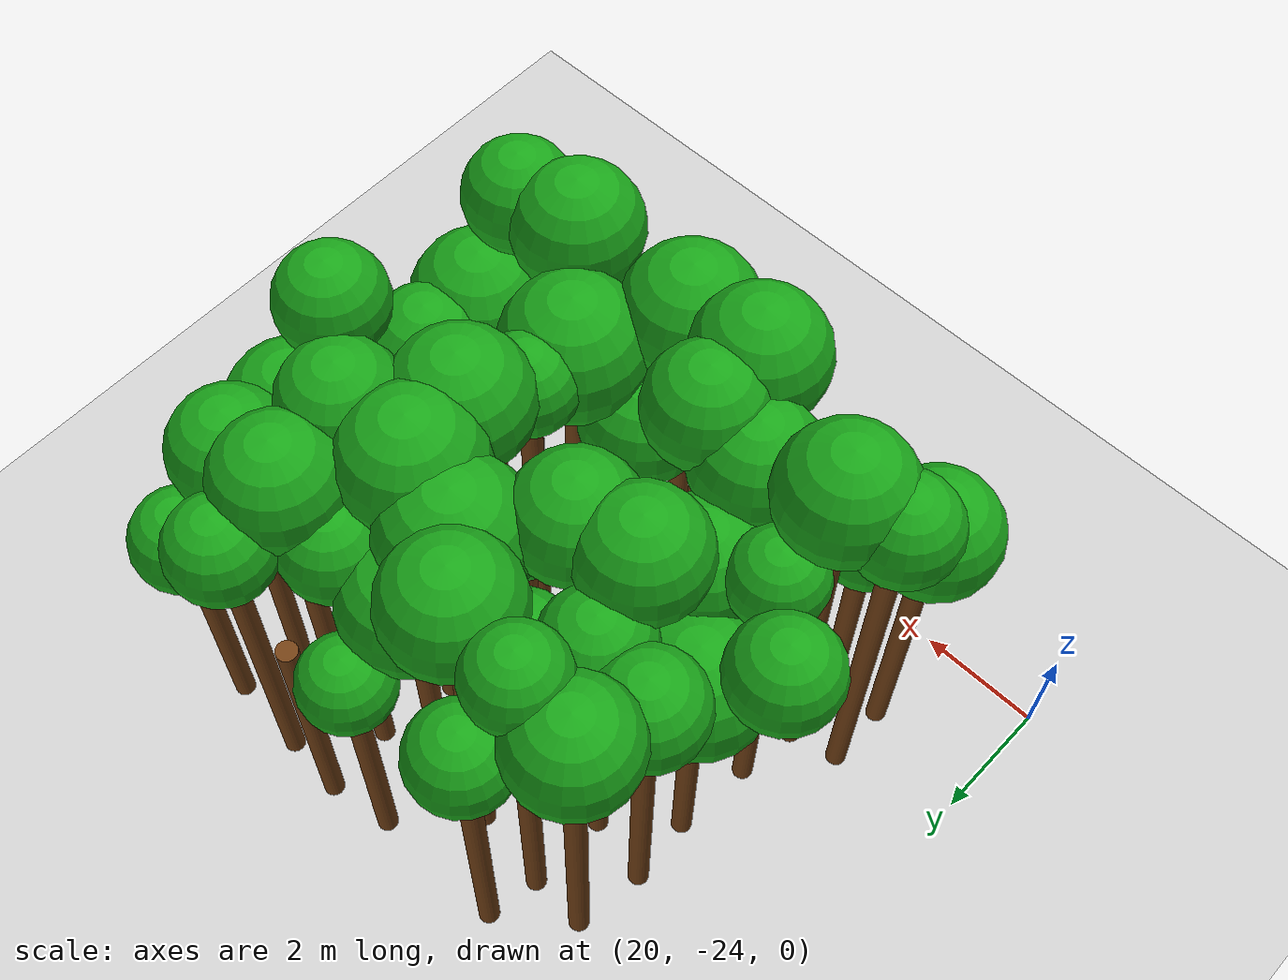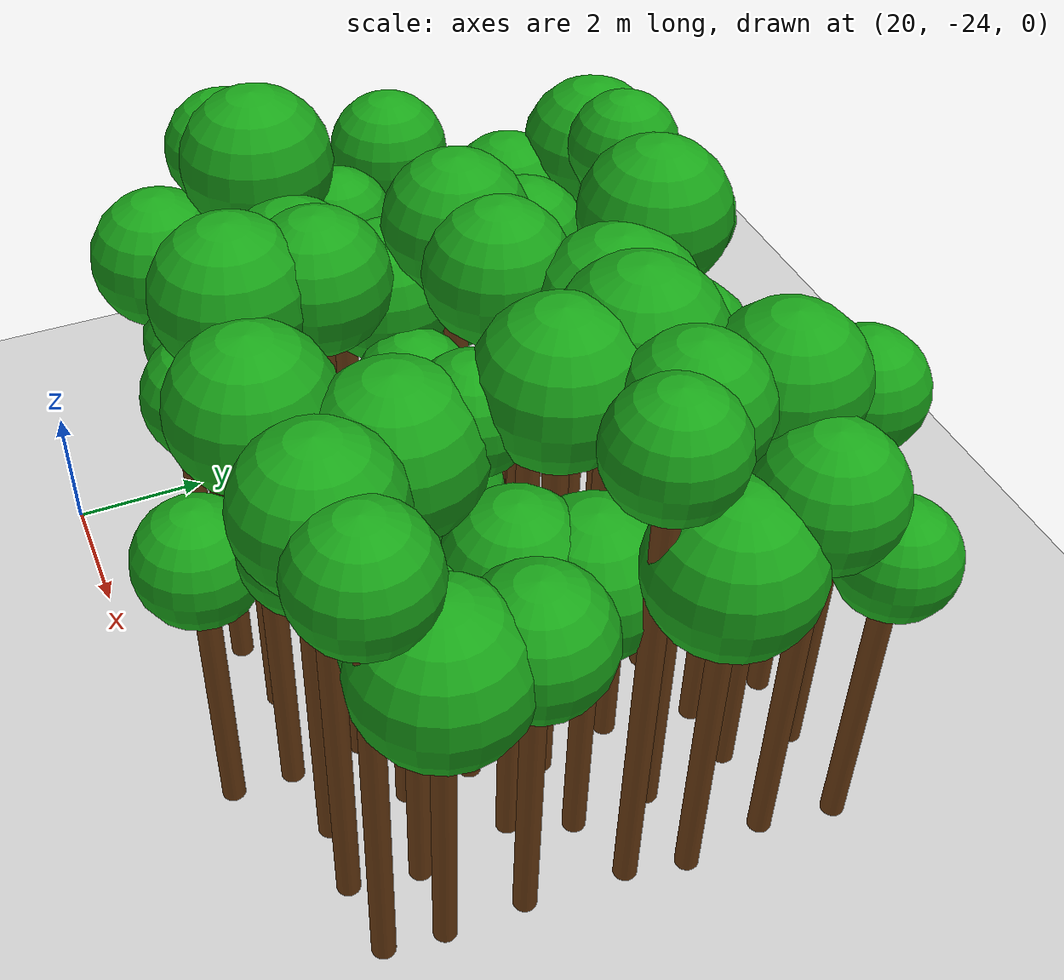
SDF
<sdf version="1.6">
 <world name="forest_world">
  <include><uri>model://sun</uri></include>
  <include><uri>model://ground_plane</uri></include>
  <model name="tree_2569_trunk">
   <static>true</static>
   <pose>21.85 -22.40 2.63 0 0 0</pose>
   <link name="link">
    <collision name="collision">
     <geometry><cylinder><radius>0.16</radius><length>5.26</length></cylinder></geometry>
    </collision>
    <visual name="visual">
     <geometry><cylinder><radius>0.16</radius><length>5.26</length></cylinder></geometry>
     <material><ambient>0.35 0.20 0.05 1</ambient><diffuse>0.45 0.25 0.08 1</diffuse></material>
    </visual>
   </link>
  </model>
  <model name="tree_2569_leaf">
   <static>true</static>
   <pose>21.85 -22.40 5.83 0 0 0</pose>
   <link name="link">
    <collision name="collision"><geometry><sphere><radius>0.94</radius></sphere></geometry></collision>
    <visual name="visual">
     <geometry><sphere><radius>0.94</radius></sphere></geometry>
     <material><ambient>0.05 0.45 0.05 1</ambient><diffuse>0.10 0.65 0.10 1</diffuse></material>
    </visual>
   </link>
  </model>
  <model name="tree_2570_trunk">
   <static>true</static>
   <pose>21.84 -21.38 3.40 0 0 0</pose>
   <link name="link">
    <collision name="collision">
     <geometry><cylinder><radius>0.16</radius><length>6.79</length></cylinder></geometry>
    </collision>
    <visual name="visual">
     <geometry><cylinder><radius>0.16</radius><length>6.79</length></cylinder></geometry>
     <material><ambient>0.35 0.20 0.05 1</ambient><diffuse>0.45 0.25 0.08 1</diffuse></material>
    </visual>
   </link>
  </model>
  <model name="tree_2570_leaf">
   <static>true</static>
   <pose>21.84 -21.38 7.26 0 0 0</pose>
   <link name="link">
    <collision name="collision"><geometry><sphere><radius>0.78</radius></sphere></geometry></collision>
    <visual name="visual">
     <geometry><sphere><radius>0.78</radius></sphere></geometry>
     <material><ambient>0.05 0.45 0.05 1</ambient><diffuse>0.10 0.65 0.10 1</diffuse></material>
    </visual>
   </link>
  </model>
  <model name="tree_2572_leaf">
   <static>true</static>
   <pose>21.77 -19.13 6.69 0 0 0</pose>
   <link name="link">
    <collision name="collision"><geometry><sphere><radius>0.79</radius></sphere></geometry></collision>
    <visual name="visual">
     <geometry><sphere><radius>0.79</radius></sphere></geometry>
     <material><ambient>0.05 0.45 0.05 1</ambient><diffuse>0.10 0.65 0.10 1</diffuse></material>
    </visual>
   </link>
  </model>
  <model name="tree_2624_trunk">
   <static>true</static>
   <pose>22.66 -22.19 2.27 0 0 0</pose>
   <link name="link">
    <collision name="collision">
     <geometry><cylinder><radius>0.16</radius><length>4.54</length></cylinder></geometry>
    </collision>
    <visual name="visual">
     <geometry><cylinder><radius>0.16</radius><length>4.54</length></cylinder></geometry>
     <material><ambient>0.35 0.20 0.05 1</ambient><diffuse>0.45 0.25 0.08 1</diffuse></material>
    </visual>
   </link>
  </model>
  <model name="tree_2624_leaf">
   <static>true</static>
   <pose>22.66 -22.19 4.99 0 0 0</pose>
   <link name="link">
    <collision name="collision"><geometry><sphere><radius>0.76</radius></sphere></geometry></collision>
    <visual name="visual">
     <geometry><sphere><radius>0.76</radius></sphere></geometry>
     <material><ambient>0.05 0.45 0.05 1</ambient><diffuse>0.10 0.65 0.10 1</diffuse></material>
    </visual>
   </link>
  </model>
  <model name="tree_2625_trunk">
   <static>true</static>
   <pose>22.62 -21.18 3.44 0 0 0</pose>
   <link name="link">
    <collision name="collision">
     <geometry><cylinder><radius>0.16</radius><length>6.88</length></cylinder></geometry>
    </collision>
    <visual name="visual">
     <geometry><cylinder><radius>0.16</radius><length>6.88</length></cylinder></geometry>
     <material><ambient>0.35 0.20 0.05 1</ambient><diffuse>0.45 0.25 0.08 1</diffuse></material>
    </visual>
   </link>
  </model>
  <model name="tree_2625_leaf">
   <static>true</static>
   <pose>22.62 -21.18 7.46 0 0 0</pose>
   <link name="link">
    <collision name="collision"><geometry><sphere><radius>0.97</radius></sphere></geometry></collision>
    <visual name="visual">
     <geometry><sphere><radius>0.97</radius></sphere></geometry>
     <material><ambient>0.05 0.45 0.05 1</ambient><diffuse>0.10 0.65 0.10 1</diffuse></material>
    </visual>
   </link>
  </model>
  <model name="tree_2626_trunk">
   <static>true</static>
   <pose>22.76 -20.19 3.00 0 0 0</pose>
   <link name="link">
    <collision name="collision">
     <geometry><cylinder><radius>0.16</radius><length>5.99</length></cylinder></geometry>
    </collision>
    <visual name="visual">
     <geometry><cylinder><radius>0.16</radius><length>5.99</length></cylinder></geometry>
     <material><ambient>0.35 0.20 0.05 1</ambient><diffuse>0.45 0.25 0.08 1</diffuse></material>
    </visual>
   </link>
  </model>
  <model name="tree_2626_leaf">
   <static>true</static>
   <pose>22.76 -20.19 6.42 0 0 0</pose>
   <link name="link">
    <collision name="collision"><geometry><sphere><radius>0.71</radius></sphere></geometry></collision>
    <visual name="visual">
     <geometry><sphere><radius>0.71</radius></sphere></geometry>
     <material><ambient>0.05 0.45 0.05 1</ambient><diffuse>0.10 0.65 0.10 1</diffuse></material>
    </visual>
   </link>
  </model>
  <model name="tree_2627_trunk">
   <static>true</static>
   <pose>22.86 -18.87 2.30 0 0 0</pose>
   <link name="link">
    <collision name="collision">
     <geometry><cylinder><radius>0.16</radius><length>4.59</length></cylinder></geometry>
    </collision>
    <visual name="visual">
     <geometry><cylinder><radius>0.16</radius><length>4.59</length></cylinder></geometry>
     <material><ambient>0.35 0.20 0.05 1</ambient><diffuse>0.45 0.25 0.08 1</diffuse></material>
    </visual>
   </link>
  </model>
  <model name="tree_2627_leaf">
   <static>true</static>
   <pose>22.86 -18.87 5.22 0 0 0</pose>
   <link name="link">
    <collision name="collision"><geometry><sphere><radius>1.05</radius></sphere></geometry></collision>
    <visual name="visual">
     <geometry><sphere><radius>1.05</radius></sphere></geometry>
     <material><ambient>0.05 0.45 0.05 1</ambient><diffuse>0.10 0.65 0.10 1</diffuse></material>
    </visual>
   </link>
  </model>
  <model name="tree_2628_trunk">
   <static>true</static>
   <pose>22.78 -17.80 2.89 0 0 0</pose>
   <link name="link">
    <collision name="collision">
     <geometry><cylinder><radius>0.16</radius><length>5.79</length></cylinder></geometry>
    </collision>
    <visual name="visual">
     <geometry><cylinder><radius>0.16</radius><length>5.79</length></cylinder></geometry>
     <material><ambient>0.35 0.20 0.05 1</ambient><diffuse>0.45 0.25 0.08 1</diffuse></material>
    </visual>
   </link>
  </model>
  <model name="tree_2628_leaf">
   <static>true</static>
   <pose>22.78 -17.80 6.28 0 0 0</pose>
   <link name="link">
    <collision name="collision"><geometry><sphere><radius>0.83</radius></sphere></geometry></collision>
    <visual name="visual">
     <geometry><sphere><radius>0.83</radius></sphere></geometry>
     <material><ambient>0.05 0.45 0.05 1</ambient><diffuse>0.10 0.65 0.10 1</diffuse></material>
    </visual>
   </link>
  </model>
  <model name="tree_2629_trunk">
   <static>true</static>
   <pose>22.94 -16.66 3.15 0 0 0</pose>
   <link name="link">
    <collision name="collision">
     <geometry><cylinder><radius>0.16</radius><length>6.30</length></cylinder></geometry>
    </collision>
    <visual name="visual">
     <geometry><cylinder><radius>0.16</radius><length>6.30</length></cylinder></geometry>
     <material><ambient>0.35 0.20 0.05 1</ambient><diffuse>0.45 0.25 0.08 1</diffuse></material>
    </visual>
   </link>
  </model>
  <model name="tree_2629_leaf">
   <static>true</static>
   <pose>22.94 -16.66 6.85 0 0 0</pose>
   <link name="link">
    <collision name="collision"><geometry><sphere><radius>0.92</radius></sphere></geometry></collision>
    <visual name="visual">
     <geometry><sphere><radius>0.92</radius></sphere></geometry>
     <material><ambient>0.05 0.45 0.05 1</ambient><diffuse>0.10 0.65 0.10 1</diffuse></material>
    </visual>
   </link>
  </model>
  <model name="tree_2679_trunk">
   <static>true</static>
   <pose>23.75 -22.39 2.19 0 0 0</pose>
   <link name="link">
    <collision name="collision">
     <geometry><cylinder><radius>0.16</radius><length>4.38</length></cylinder></geometry>
    </collision>
    <visual name="visual">
     <geometry><cylinder><radius>0.16</radius><length>4.38</length></cylinder></geometry>
     <material><ambient>0.35 0.20 0.05 1</ambient><diffuse>0.45 0.25 0.08 1</diffuse></material>
    </visual>
   </link>
  </model>
  <model name="tree_2679_leaf">
   <static>true</static>
   <pose>23.75 -22.39 4.91 0 0 0</pose>
   <link name="link">
    <collision name="collision"><geometry><sphere><radius>0.89</radius></sphere></geometry></collision>
    <visual name="visual">
     <geometry><sphere><radius>0.89</radius></sphere></geometry>
     <material><ambient>0.05 0.45 0.05 1</ambient><diffuse>0.10 0.65 0.10 1</diffuse></material>
    </visual>
   </link>
  </model>
  <model name="tree_2680_trunk">
   <static>true</static>
   <pose>24.00 -21.18 3.06 0 0 0</pose>
   <link name="link">
    <collision name="collision">
     <geometry><cylinder><radius>0.16</radius><length>6.12</length></cylinder></geometry>
    </collision>
    <visual name="visual">
     <geometry><cylinder><radius>0.16</radius><length>6.12</length></cylinder></geometry>
     <material><ambient>0.35 0.20 0.05 1</ambient><diffuse>0.45 0.25 0.08 1</diffuse></material>
    </visual>
   </link>
  </model>
  <model name="tree_2680_leaf">
   <static>true</static>
   <pose>24.00 -21.18 6.69 0 0 0</pose>
   <link name="link">
    <collision name="collision"><geometry><sphere><radius>0.94</radius></sphere></geometry></collision>
    <visual name="visual">
     <geometry><sphere><radius>0.94</radius></sphere></geometry>
     <material><ambient>0.05 0.45 0.05 1</ambient><diffuse>0.10 0.65 0.10 1</diffuse></material>
    </visual>
   </link>
  </model>
  <model name="tree_2681_trunk">
   <static>true</static>
   <pose>23.76 -19.94 2.68 0 0 0</pose>
   <link name="link">
    <collision name="collision">
     <geometry><cylinder><radius>0.16</radius><length>5.36</length></cylinder></geometry>
    </collision>
    <visual name="visual">
     <geometry><cylinder><radius>0.16</radius><length>5.36</length></cylinder></geometry>
     <material><ambient>0.35 0.20 0.05 1</ambient><diffuse>0.45 0.25 0.08 1</diffuse></material>
    </visual>
   </link>
  </model>
  <model name="tree_2681_leaf">
   <static>true</static>
   <pose>23.76 -19.94 5.92 0 0 0</pose>
   <link name="link">
    <collision name="collision"><geometry><sphere><radius>0.94</radius></sphere></geometry></collision>
    <visual name="visual">
     <geometry><sphere><radius>0.94</radius></sphere></geometry>
     <material><ambient>0.05 0.45 0.05 1</ambient><diffuse>0.10 0.65 0.10 1</diffuse></material>
    </visual>
   </link>
  </model>
  <model name="tree_2682_trunk">
   <static>true</static>
   <pose>24.06 -19.07 3.17 0 0 0</pose>
   <link name="link">
    <collision name="collision">
     <geometry><cylinder><radius>0.16</radius><length>6.34</length></cylinder></geometry>
    </collision>
    <visual name="visual">
     <geometry><cylinder><radius>0.16</radius><length>6.34</length></cylinder></geometry>
     <material><ambient>0.35 0.20 0.05 1</ambient><diffuse>0.45 0.25 0.08 1</diffuse></material>
    </visual>
   </link>
  </model>
  <model name="tree_2682_leaf">
   <static>true</static>
   <pose>24.06 -19.07 6.91 0 0 0</pose>
   <link name="link">
    <collision name="collision"><geometry><sphere><radius>0.95</radius></sphere></geometry></collision>
    <visual name="visual">
     <geometry><sphere><radius>0.95</radius></sphere></geometry>
     <material><ambient>0.05 0.45 0.05 1</ambient><diffuse>0.10 0.65 0.10 1</diffuse></material>
    </visual>
   </link>
  </model>
  <model name="tree_2683_trunk">
   <static>true</static>
   <pose>23.82 -18.00 2.89 0 0 0</pose>
   <link name="link">
    <collision name="collision">
     <geometry><cylinder><radius>0.16</radius><length>5.78</length></cylinder></geometry>
    </collision>
    <visual name="visual">
     <geometry><cylinder><radius>0.16</radius><length>5.78</length></cylinder></geometry>
     <material><ambient>0.35 0.20 0.05 1</ambient><diffuse>0.45 0.25 0.08 1</diffuse></material>
    </visual>
   </link>
  </model>
  <model name="tree_2683_leaf">
   <static>true</static>
   <pose>23.82 -18.00 6.27 0 0 0</pose>
   <link name="link">
    <collision name="collision"><geometry><sphere><radius>0.81</radius></sphere></geometry></collision>
    <visual name="visual">
     <geometry><sphere><radius>0.81</radius></sphere></geometry>
     <material><ambient>0.05 0.45 0.05 1</ambient><diffuse>0.10 0.65 0.10 1</diffuse></material>
    </visual>
   </link>
  </model>
  <model name="tree_2684_trunk">
   <static>true</static>
   <pose>23.85 -16.67 3.46 0 0 0</pose>
   <link name="link">
    <collision name="collision">
     <geometry><cylinder><radius>0.16</radius><length>6.92</length></cylinder></geometry>
    </collision>
    <visual name="visual">
     <geometry><cylinder><radius>0.16</radius><length>6.92</length></cylinder></geometry>
     <material><ambient>0.35 0.20 0.05 1</ambient><diffuse>0.45 0.25 0.08 1</diffuse></material>
    </visual>
   </link>
  </model>
  <model name="tree_2684_leaf">
   <static>true</static>
   <pose>23.85 -16.67 7.35 0 0 0</pose>
   <link name="link">
    <collision name="collision"><geometry><sphere><radius>0.72</radius></sphere></geometry></collision>
    <visual name="visual">
     <geometry><sphere><radius>0.72</radius></sphere></geometry>
     <material><ambient>0.05 0.45 0.05 1</ambient><diffuse>0.10 0.65 0.10 1</diffuse></material>
    </visual>
   </link>
  </model>
  <model name="tree_2685_trunk">
   <static>true</static>
   <pose>24.01 -15.82 2.86 0 0 0</pose>
   <link name="link">
    <collision name="collision">
     <geometry><cylinder><radius>0.16</radius><length>5.71</length></cylinder></geometry>
    </collision>
    <visual name="visual">
     <geometry><cylinder><radius>0.16</radius><length>5.71</length></cylinder></geometry>
     <material><ambient>0.35 0.20 0.05 1</ambient><diffuse>0.45 0.25 0.08 1</diffuse></material>
    </visual>
   </link>
  </model>
  <model name="tree_2685_leaf">
   <static>true</static>
   <pose>24.01 -15.82 6.17 0 0 0</pose>
   <link name="link">
    <collision name="collision"><geometry><sphere><radius>0.76</radius></sphere></geometry></collision>
    <visual name="visual">
     <geometry><sphere><radius>0.76</radius></sphere></geometry>
     <material><ambient>0.05 0.45 0.05 1</ambient><diffuse>0.10 0.65 0.10 1</diffuse></material>
    </visual>
   </link>
  </model>
  <model name="tree_2734_trunk">
   <static>true</static>
   <pose>24.85 -22.18 3.30 0 0 0</pose>
   <link name="link">
    <collision name="collision">
     <geometry><cylinder><radius>0.16</radius><length>6.60</length></cylinder></geometry>
    </collision>
    <visual name="visual">
     <geometry><cylinder><radius>0.16</radius><length>6.60</length></cylinder></geometry>
     <material><ambient>0.35 0.20 0.05 1</ambient><diffuse>0.45 0.25 0.08 1</diffuse></material>
    </visual>
   </link>
  </model>
  <model name="tree_2734_leaf">
   <static>true</static>
   <pose>24.85 -22.18 7.19 0 0 0</pose>
   <link name="link">
    <collision name="collision"><geometry><sphere><radius>0.99</radius></sphere></geometry></collision>
    <visual name="visual">
     <geometry><sphere><radius>0.99</radius></sphere></geometry>
     <material><ambient>0.05 0.45 0.05 1</ambient><diffuse>0.10 0.65 0.10 1</diffuse></material>
    </visual>
   </link>
  </model>
  <model name="tree_2735_trunk">
   <static>true</static>
   <pose>24.85 -21.15 3.29 0 0 0</pose>
   <link name="link">
    <collision name="collision">
     <geometry><cylinder><radius>0.16</radius><length>6.58</length></cylinder></geometry>
    </collision>
    <visual name="visual">
     <geometry><cylinder><radius>0.16</radius><length>6.58</length></cylinder></geometry>
     <material><ambient>0.35 0.20 0.05 1</ambient><diffuse>0.45 0.25 0.08 1</diffuse></material>
    </visual>
   </link>
  </model>
  <model name="tree_2735_leaf">
   <static>true</static>
   <pose>24.85 -21.15 7.12 0 0 0</pose>
   <link name="link">
    <collision name="collision"><geometry><sphere><radius>0.90</radius></sphere></geometry></collision>
    <visual name="visual">
     <geometry><sphere><radius>0.90</radius></sphere></geometry>
     <material><ambient>0.05 0.45 0.05 1</ambient><diffuse>0.10 0.65 0.10 1</diffuse></material>
    </visual>
   </link>
  </model>
  <model name="tree_2736_trunk">
   <static>true</static>
   <pose>24.87 -19.98 2.38 0 0 0</pose>
   <link name="link">
    <collision name="collision">
     <geometry><cylinder><radius>0.16</radius><length>4.75</length></cylinder></geometry>
    </collision>
    <visual name="visual">
     <geometry><cylinder><radius>0.16</radius><length>4.75</length></cylinder></geometry>
     <material><ambient>0.35 0.20 0.05 1</ambient><diffuse>0.45 0.25 0.08 1</diffuse></material>
    </visual>
   </link>
  </model>
  <model name="tree_2736_leaf">
   <static>true</static>
   <pose>24.87 -19.98 5.20 0 0 0</pose>
   <link name="link">
    <collision name="collision"><geometry><sphere><radius>0.75</radius></sphere></geometry></collision>
    <visual name="visual">
     <geometry><sphere><radius>0.75</radius></sphere></geometry>
     <material><ambient>0.05 0.45 0.05 1</ambient><diffuse>0.10 0.65 0.10 1</diffuse></material>
    </visual>
   </link>
  </model>
  <model name="tree_2737_trunk">
   <static>true</static>
   <pose>25.06 -18.93 3.12 0 0 0</pose>
   <link name="link">
    <collision name="collision">
     <geometry><cylinder><radius>0.16</radius><length>6.23</length></cylinder></geometry>
    </collision>
    <visual name="visual">
     <geometry><cylinder><radius>0.16</radius><length>6.23</length></cylinder></geometry>
     <material><ambient>0.35 0.20 0.05 1</ambient><diffuse>0.45 0.25 0.08 1</diffuse></material>
    </visual>
   </link>
  </model>
  <model name="tree_2737_leaf">
   <static>true</static>
   <pose>25.06 -18.93 6.80 0 0 0</pose>
   <link name="link">
    <collision name="collision"><geometry><sphere><radius>0.94</radius></sphere></geometry></collision>
    <visual name="visual">
     <geometry><sphere><radius>0.94</radius></sphere></geometry>
     <material><ambient>0.05 0.45 0.05 1</ambient><diffuse>0.10 0.65 0.10 1</diffuse></material>
    </visual>
   </link>
  </model>
  <model name="tree_2738_trunk">
   <static>true</static>
   <pose>25.00 -17.75 2.19 0 0 0</pose>
   <link name="link">
    <collision name="collision">
     <geometry><cylinder><radius>0.16</radius><length>4.37</length></cylinder></geometry>
    </collision>
    <visual name="visual">
     <geometry><cylinder><radius>0.16</radius><length>4.37</length></cylinder></geometry>
     <material><ambient>0.35 0.20 0.05 1</ambient><diffuse>0.45 0.25 0.08 1</diffuse></material>
    </visual>
   </link>
  </model>
  <model name="tree_2738_leaf">
   <static>true</static>
   <pose>25.00 -17.75 4.88 0 0 0</pose>
   <link name="link">
    <collision name="collision"><geometry><sphere><radius>0.85</radius></sphere></geometry></collision>
    <visual name="visual">
     <geometry><sphere><radius>0.85</radius></sphere></geometry>
     <material><ambient>0.05 0.45 0.05 1</ambient><diffuse>0.10 0.65 0.10 1</diffuse></material>
    </visual>
   </link>
  </model>
  <model name="tree_2739_trunk">
   <static>true</static>
   <pose>25.15 -16.87 3.29 0 0 0</pose>
   <link name="link">
    <collision name="collision">
     <geometry><cylinder><radius>0.16</radius><length>6.59</length></cylinder></geometry>
    </collision>
    <visual name="visual">
     <geometry><cylinder><radius>0.16</radius><length>6.59</length></cylinder></geometry>
     <material><ambient>0.35 0.20 0.05 1</ambient><diffuse>0.45 0.25 0.08 1</diffuse></material>
    </visual>
   </link>
  </model>
  <model name="tree_2739_leaf">
   <static>true</static>
   <pose>25.15 -16.87 7.18 0 0 0</pose>
   <link name="link">
    <collision name="collision"><geometry><sphere><radius>0.98</radius></sphere></geometry></collision>
    <visual name="visual">
     <geometry><sphere><radius>0.98</radius></sphere></geometry>
     <material><ambient>0.05 0.45 0.05 1</ambient><diffuse>0.10 0.65 0.10 1</diffuse></material>
    </visual>
   </link>
  </model>
  <model name="tree_2788_trunk">
   <static>true</static>
   <pose>26.23 -23.25 2.02 0 0 0</pose>
   <link name="link">
    <collision name="collision">
     <geometry><cylinder><radius>0.16</radius><length>4.03</length></cylinder></geometry>
    </collision>
    <visual name="visual">
     <geometry><cylinder><radius>0.16</radius><length>4.03</length></cylinder></geometry>
     <material><ambient>0.35 0.20 0.05 1</ambient><diffuse>0.45 0.25 0.08 1</diffuse></material>
    </visual>
   </link>
  </model>
  <model name="tree_2788_leaf">
   <static>true</static>
   <pose>26.23 -23.25 4.53 0 0 0</pose>
   <link name="link">
    <collision name="collision"><geometry><sphere><radius>0.83</radius></sphere></geometry></collision>
    <visual name="visual">
     <geometry><sphere><radius>0.83</radius></sphere></geometry>
     <material><ambient>0.05 0.45 0.05 1</ambient><diffuse>0.10 0.65 0.10 1</diffuse></material>
    </visual>
   </link>
  </model>
  <model name="tree_2789_trunk">
   <static>true</static>
   <pose>26.23 -22.40 3.00 0 0 0</pose>
   <link name="link">
    <collision name="collision">
     <geometry><cylinder><radius>0.16</radius><length>6.01</length></cylinder></geometry>
    </collision>
    <visual name="visual">
     <geometry><cylinder><radius>0.16</radius><length>6.01</length></cylinder></geometry>
     <material><ambient>0.35 0.20 0.05 1</ambient><diffuse>0.45 0.25 0.08 1</diffuse></material>
    </visual>
   </link>
  </model>
  <model name="tree_2789_leaf">
   <static>true</static>
   <pose>26.23 -22.40 6.63 0 0 0</pose>
   <link name="link">
    <collision name="collision"><geometry><sphere><radius>1.03</radius></sphere></geometry></collision>
    <visual name="visual">
     <geometry><sphere><radius>1.03</radius></sphere></geometry>
     <material><ambient>0.05 0.45 0.05 1</ambient><diffuse>0.10 0.65 0.10 1</diffuse></material>
    </visual>
   </link>
  </model>
  <model name="tree_2790_trunk">
   <static>true</static>
   <pose>26.12 -21.37 2.33 0 0 0</pose>
   <link name="link">
    <collision name="collision">
     <geometry><cylinder><radius>0.16</radius><length>4.66</length></cylinder></geometry>
    </collision>
    <visual name="visual">
     <geometry><cylinder><radius>0.16</radius><length>4.66</length></cylinder></geometry>
     <material><ambient>0.35 0.20 0.05 1</ambient><diffuse>0.45 0.25 0.08 1</diffuse></material>
    </visual>
   </link>
  </model>
  <model name="tree_2790_leaf">
   <static>true</static>
   <pose>26.12 -21.37 5.23 0 0 0</pose>
   <link name="link">
    <collision name="collision"><geometry><sphere><radius>0.95</radius></sphere></geometry></collision>
    <visual name="visual">
     <geometry><sphere><radius>0.95</radius></sphere></geometry>
     <material><ambient>0.05 0.45 0.05 1</ambient><diffuse>0.10 0.65 0.10 1</diffuse></material>
    </visual>
   </link>
  </model>
  <model name="tree_2791_trunk">
   <static>true</static>
   <pose>26.22 -20.04 2.07 0 0 0</pose>
   <link name="link">
    <collision name="collision">
     <geometry><cylinder><radius>0.16</radius><length>4.14</length></cylinder></geometry>
    </collision>
    <visual name="visual">
     <geometry><cylinder><radius>0.16</radius><length>4.14</length></cylinder></geometry>
     <material><ambient>0.35 0.20 0.05 1</ambient><diffuse>0.45 0.25 0.08 1</diffuse></material>
    </visual>
   </link>
  </model>
  <model name="tree_2791_leaf">
   <static>true</static>
   <pose>26.22 -20.04 4.56 0 0 0</pose>
   <link name="link">
    <collision name="collision"><geometry><sphere><radius>0.70</radius></sphere></geometry></collision>
    <visual name="visual">
     <geometry><sphere><radius>0.70</radius></sphere></geometry>
     <material><ambient>0.05 0.45 0.05 1</ambient><diffuse>0.10 0.65 0.10 1</diffuse></material>
    </visual>
   </link>
  </model>
  <model name="tree_2792_trunk">
   <static>true</static>
   <pose>26.04 -18.88 2.48 0 0 0</pose>
   <link name="link">
    <collision name="collision">
     <geometry><cylinder><radius>0.16</radius><length>4.95</length></cylinder></geometry>
    </collision>
    <visual name="visual">
     <geometry><cylinder><radius>0.16</radius><length>4.95</length></cylinder></geometry>
     <material><ambient>0.35 0.20 0.05 1</ambient><diffuse>0.45 0.25 0.08 1</diffuse></material>
    </visual>
   </link>
  </model>
  <model name="tree_2792_leaf">
   <static>true</static>
   <pose>26.04 -18.88 5.37 0 0 0</pose>
   <link name="link">
    <collision name="collision"><geometry><sphere><radius>0.71</radius></sphere></geometry></collision>
    <visual name="visual">
     <geometry><sphere><radius>0.71</radius></sphere></geometry>
     <material><ambient>0.05 0.45 0.05 1</ambient><diffuse>0.10 0.65 0.10 1</diffuse></material>
    </visual>
   </link>
  </model>
  <model name="tree_2793_trunk">
   <static>true</static>
   <pose>26.10 -17.80 2.96 0 0 0</pose>
   <link name="link">
    <collision name="collision">
     <geometry><cylinder><radius>0.16</radius><length>5.92</length></cylinder></geometry>
    </collision>
    <visual name="visual">
     <geometry><cylinder><radius>0.16</radius><length>5.92</length></cylinder></geometry>
     <material><ambient>0.35 0.20 0.05 1</ambient><diffuse>0.45 0.25 0.08 1</diffuse></material>
    </visual>
   </link>
  </model>
  <model name="tree_2793_leaf">
   <static>true</static>
   <pose>26.10 -17.80 6.58 0 0 0</pose>
   <link name="link">
    <collision name="collision"><geometry><sphere><radius>1.10</radius></sphere></geometry></collision>
    <visual name="visual">
     <geometry><sphere><radius>1.10</radius></sphere></geometry>
     <material><ambient>0.05 0.45 0.05 1</ambient><diffuse>0.10 0.65 0.10 1</diffuse></material>
    </visual>
   </link>
  </model>
  <model name="tree_2794_trunk">
   <static>true</static>
   <pose>26.17 -16.98 2.57 0 0 0</pose>
   <link name="link">
    <collision name="collision">
     <geometry><cylinder><radius>0.16</radius><length>5.13</length></cylinder></geometry>
    </collision>
    <visual name="visual">
     <geometry><cylinder><radius>0.16</radius><length>5.13</length></cylinder></geometry>
     <material><ambient>0.35 0.20 0.05 1</ambient><diffuse>0.45 0.25 0.08 1</diffuse></material>
    </visual>
   </link>
  </model>
  <model name="tree_2794_leaf">
   <static>true</static>
   <pose>26.17 -16.98 5.75 0 0 0</pose>
   <link name="link">
    <collision name="collision"><geometry><sphere><radius>1.02</radius></sphere></geometry></collision>
    <visual name="visual">
     <geometry><sphere><radius>1.02</radius></sphere></geometry>
     <material><ambient>0.05 0.45 0.05 1</ambient><diffuse>0.10 0.65 0.10 1</diffuse></material>
    </visual>
   </link>
  </model>
  <model name="tree_2795_trunk">
   <static>true</static>
   <pose>26.19 -15.77 2.35 0 0 0</pose>
   <link name="link">
    <collision name="collision">
     <geometry><cylinder><radius>0.16</radius><length>4.70</length></cylinder></geometry>
    </collision>
    <visual name="visual">
     <geometry><cylinder><radius>0.16</radius><length>4.70</length></cylinder></geometry>
     <material><ambient>0.35 0.20 0.05 1</ambient><diffuse>0.45 0.25 0.08 1</diffuse></material>
    </visual>
   </link>
  </model>
  <model name="tree_2795_leaf">
   <static>true</static>
   <pose>26.19 -15.77 5.12 0 0 0</pose>
   <link name="link">
    <collision name="collision"><geometry><sphere><radius>0.70</radius></sphere></geometry></collision>
    <visual name="visual">
     <geometry><sphere><radius>0.70</radius></sphere></geometry>
     <material><ambient>0.05 0.45 0.05 1</ambient><diffuse>0.10 0.65 0.10 1</diffuse></material>
    </visual>
   </link>
  </model>
  <model name="tree_2844_trunk">
   <static>true</static>
   <pose>27.30 -22.22 2.43 0 0 0</pose>
   <link name="link">
    <collision name="collision">
     <geometry><cylinder><radius>0.16</radius><length>4.86</length></cylinder></geometry>
    </collision>
    <visual name="visual">
     <geometry><cylinder><radius>0.16</radius><length>4.86</length></cylinder></geometry>
     <material><ambient>0.35 0.20 0.05 1</ambient><diffuse>0.45 0.25 0.08 1</diffuse></material>
    </visual>
   </link>
  </model>
  <model name="tree_2844_leaf">
   <static>true</static>
   <pose>27.30 -22.22 5.35 0 0 0</pose>
   <link name="link">
    <collision name="collision"><geometry><sphere><radius>0.80</radius></sphere></geometry></collision>
    <visual name="visual">
     <geometry><sphere><radius>0.80</radius></sphere></geometry>
     <material><ambient>0.05 0.45 0.05 1</ambient><diffuse>0.10 0.65 0.10 1</diffuse></material>
    </visual>
   </link>
  </model>
  <model name="tree_2845_trunk">
   <static>true</static>
   <pose>27.15 -21.05 2.83 0 0 0</pose>
   <link name="link">
    <collision name="collision">
     <geometry><cylinder><radius>0.16</radius><length>5.66</length></cylinder></geometry>
    </collision>
    <visual name="visual">
     <geometry><cylinder><radius>0.16</radius><length>5.66</length></cylinder></geometry>
     <material><ambient>0.35 0.20 0.05 1</ambient><diffuse>0.45 0.25 0.08 1</diffuse></material>
    </visual>
   </link>
  </model>
  <model name="tree_2845_leaf">
   <static>true</static>
   <pose>27.15 -21.05 6.31 0 0 0</pose>
   <link name="link">
    <collision name="collision"><geometry><sphere><radius>1.09</radius></sphere></geometry></collision>
    <visual name="visual">
     <geometry><sphere><radius>1.09</radius></sphere></geometry>
     <material><ambient>0.05 0.45 0.05 1</ambient><diffuse>0.10 0.65 0.10 1</diffuse></material>
    </visual>
   </link>
  </model>
  <model name="tree_2846_trunk">
   <static>true</static>
   <pose>27.08 -20.10 3.03 0 0 0</pose>
   <link name="link">
    <collision name="collision">
     <geometry><cylinder><radius>0.16</radius><length>6.05</length></cylinder></geometry>
    </collision>
    <visual name="visual">
     <geometry><cylinder><radius>0.16</radius><length>6.05</length></cylinder></geometry>
     <material><ambient>0.35 0.20 0.05 1</ambient><diffuse>0.45 0.25 0.08 1</diffuse></material>
    </visual>
   </link>
  </model>
  <model name="tree_2846_leaf">
   <static>true</static>
   <pose>27.08 -20.10 6.50 0 0 0</pose>
   <link name="link">
    <collision name="collision"><geometry><sphere><radius>0.75</radius></sphere></geometry></collision>
    <visual name="visual">
     <geometry><sphere><radius>0.75</radius></sphere></geometry>
     <material><ambient>0.05 0.45 0.05 1</ambient><diffuse>0.10 0.65 0.10 1</diffuse></material>
    </visual>
   </link>
  </model>
  <model name="tree_2847_trunk">
   <static>true</static>
   <pose>27.36 -19.15 3.12 0 0 0</pose>
   <link name="link">
    <collision name="collision">
     <geometry><cylinder><radius>0.16</radius><length>6.24</length></cylinder></geometry>
    </collision>
    <visual name="visual">
     <geometry><cylinder><radius>0.16</radius><length>6.24</length></cylinder></geometry>
     <material><ambient>0.35 0.20 0.05 1</ambient><diffuse>0.45 0.25 0.08 1</diffuse></material>
    </visual>
   </link>
  </model>
  <model name="tree_2847_leaf">
   <static>true</static>
   <pose>27.36 -19.15 6.86 0 0 0</pose>
   <link name="link">
    <collision name="collision"><geometry><sphere><radius>1.04</radius></sphere></geometry></collision>
    <visual name="visual">
     <geometry><sphere><radius>1.04</radius></sphere></geometry>
     <material><ambient>0.05 0.45 0.05 1</ambient><diffuse>0.10 0.65 0.10 1</diffuse></material>
    </visual>
   </link>
  </model>
  <model name="tree_2848_trunk">
   <static>true</static>
   <pose>27.10 -18.04 3.15 0 0 0</pose>
   <link name="link">
    <collision name="collision">
     <geometry><cylinder><radius>0.16</radius><length>6.30</length></cylinder></geometry>
    </collision>
    <visual name="visual">
     <geometry><cylinder><radius>0.16</radius><length>6.30</length></cylinder></geometry>
     <material><ambient>0.35 0.20 0.05 1</ambient><diffuse>0.45 0.25 0.08 1</diffuse></material>
    </visual>
   </link>
  </model>
  <model name="tree_2848_leaf">
   <static>true</static>
   <pose>27.10 -18.04 6.93 0 0 0</pose>
   <link name="link">
    <collision name="collision"><geometry><sphere><radius>1.06</radius></sphere></geometry></collision>
    <visual name="visual">
     <geometry><sphere><radius>1.06</radius></sphere></geometry>
     <material><ambient>0.05 0.45 0.05 1</ambient><diffuse>0.10 0.65 0.10 1</diffuse></material>
    </visual>
   </link>
  </model>
  <model name="tree_2849_trunk">
   <static>true</static>
   <pose>27.32 -16.76 2.81 0 0 0</pose>
   <link name="link">
    <collision name="collision">
     <geometry><cylinder><radius>0.16</radius><length>5.63</length></cylinder></geometry>
    </collision>
    <visual name="visual">
     <geometry><cylinder><radius>0.16</radius><length>5.63</length></cylinder></geometry>
     <material><ambient>0.35 0.20 0.05 1</ambient><diffuse>0.45 0.25 0.08 1</diffuse></material>
    </visual>
   </link>
  </model>
  <model name="tree_2849_leaf">
   <static>true</static>
   <pose>27.32 -16.76 6.11 0 0 0</pose>
   <link name="link">
    <collision name="collision"><geometry><sphere><radius>0.80</radius></sphere></geometry></collision>
    <visual name="visual">
     <geometry><sphere><radius>0.80</radius></sphere></geometry>
     <material><ambient>0.05 0.45 0.05 1</ambient><diffuse>0.10 0.65 0.10 1</diffuse></material>
    </visual>
   </link>
  </model>
  <model name="tree_2850_trunk">
   <static>true</static>
   <pose>27.22 -15.59 2.44 0 0 0</pose>
   <link name="link">
    <collision name="collision">
     <geometry><cylinder><radius>0.16</radius><length>4.87</length></cylinder></geometry>
    </collision>
    <visual name="visual">
     <geometry><cylinder><radius>0.16</radius><length>4.87</length></cylinder></geometry>
     <material><ambient>0.35 0.20 0.05 1</ambient><diffuse>0.45 0.25 0.08 1</diffuse></material>
    </visual>
   </link>
  </model>
  <model name="tree_2899_trunk">
   <static>true</static>
   <pose>28.25 -22.29 3.13 0 0 0</pose>
   <link name="link">
    <collision name="collision">
     <geometry><cylinder><radius>0.16</radius><length>6.25</length></cylinder></geometry>
    </collision>
    <visual name="visual">
     <geometry><cylinder><radius>0.16</radius><length>6.25</length></cylinder></geometry>
     <material><ambient>0.35 0.20 0.05 1</ambient><diffuse>0.45 0.25 0.08 1</diffuse></material>
    </visual>
   </link>
  </model>
  <model name="tree_2899_leaf">
   <static>true</static>
   <pose>28.25 -22.29 6.84 0 0 0</pose>
   <link name="link">
    <collision name="collision"><geometry><sphere><radius>0.98</radius></sphere></geometry></collision>
    <visual name="visual">
     <geometry><sphere><radius>0.98</radius></sphere></geometry>
     <material><ambient>0.05 0.45 0.05 1</ambient><diffuse>0.10 0.65 0.10 1</diffuse></material>
    </visual>
   </link>
  </model>
  <model name="tree_2900_trunk">
   <static>true</static>
   <pose>28.38 -21.33 2.02 0 0 0</pose>
   <link name="link">
    <collision name="collision">
     <geometry><cylinder><radius>0.16</radius><length>4.05</length></cylinder></geometry>
    </collision>
    <visual name="visual">
     <geometry><cylinder><radius>0.16</radius><length>4.05</length></cylinder></geometry>
     <material><ambient>0.35 0.20 0.05 1</ambient><diffuse>0.45 0.25 0.08 1</diffuse></material>
    </visual>
   </link>
  </model>
  <model name="tree_2900_leaf">
   <static>true</static>
   <pose>28.38 -21.33 4.61 0 0 0</pose>
   <link name="link">
    <collision name="collision"><geometry><sphere><radius>0.93</radius></sphere></geometry></collision>
    <visual name="visual">
     <geometry><sphere><radius>0.93</radius></sphere></geometry>
     <material><ambient>0.05 0.45 0.05 1</ambient><diffuse>0.10 0.65 0.10 1</diffuse></material>
    </visual>
   </link>
  </model>
  <model name="tree_2901_trunk">
   <static>true</static>
   <pose>28.13 -19.98 2.27 0 0 0</pose>
   <link name="link">
    <collision name="collision">
     <geometry><cylinder><radius>0.16</radius><length>4.54</length></cylinder></geometry>
    </collision>
    <visual name="visual">
     <geometry><cylinder><radius>0.16</radius><length>4.54</length></cylinder></geometry>
     <material><ambient>0.35 0.20 0.05 1</ambient><diffuse>0.45 0.25 0.08 1</diffuse></material>
    </visual>
   </link>
  </model>
  <model name="tree_2901_leaf">
   <static>true</static>
   <pose>28.13 -19.98 5.08 0 0 0</pose>
   <link name="link">
    <collision name="collision"><geometry><sphere><radius>0.90</radius></sphere></geometry></collision>
    <visual name="visual">
     <geometry><sphere><radius>0.90</radius></sphere></geometry>
     <material><ambient>0.05 0.45 0.05 1</ambient><diffuse>0.10 0.65 0.10 1</diffuse></material>
    </visual>
   </link>
  </model>
  <model name="tree_2902_trunk">
   <static>true</static>
   <pose>28.45 -19.14 2.10 0 0 0</pose>
   <link name="link">
    <collision name="collision">
     <geometry><cylinder><radius>0.16</radius><length>4.20</length></cylinder></geometry>
    </collision>
    <visual name="visual">
     <geometry><cylinder><radius>0.16</radius><length>4.20</length></cylinder></geometry>
     <material><ambient>0.35 0.20 0.05 1</ambient><diffuse>0.45 0.25 0.08 1</diffuse></material>
    </visual>
   </link>
  </model>
  <model name="tree_2902_leaf">
   <static>true</static>
   <pose>28.45 -19.14 4.80 0 0 0</pose>
   <link name="link">
    <collision name="collision"><geometry><sphere><radius>1.01</radius></sphere></geometry></collision>
    <visual name="visual">
     <geometry><sphere><radius>1.01</radius></sphere></geometry>
     <material><ambient>0.05 0.45 0.05 1</ambient><diffuse>0.10 0.65 0.10 1</diffuse></material>
    </visual>
   </link>
  </model>
  <model name="tree_2903_trunk">
   <static>true</static>
   <pose>28.39 -18.02 3.20 0 0 0</pose>
   <link name="link">
    <collision name="collision">
     <geometry><cylinder><radius>0.16</radius><length>6.41</length></cylinder></geometry>
    </collision>
    <visual name="visual">
     <geometry><cylinder><radius>0.16</radius><length>6.41</length></cylinder></geometry>
     <material><ambient>0.35 0.20 0.05 1</ambient><diffuse>0.45 0.25 0.08 1</diffuse></material>
    </visual>
   </link>
  </model>
  <model name="tree_2903_leaf">
   <static>true</static>
   <pose>28.39 -18.02 6.96 0 0 0</pose>
   <link name="link">
    <collision name="collision"><geometry><sphere><radius>0.91</radius></sphere></geometry></collision>
    <visual name="visual">
     <geometry><sphere><radius>0.91</radius></sphere></geometry>
     <material><ambient>0.05 0.45 0.05 1</ambient><diffuse>0.10 0.65 0.10 1</diffuse></material>
    </visual>
   </link>
  </model>
  <model name="tree_2904_trunk">
   <static>true</static>
   <pose>28.18 -16.72 3.09 0 0 0</pose>
   <link name="link">
    <collision name="collision">
     <geometry><cylinder><radius>0.16</radius><length>6.19</length></cylinder></geometry>
    </collision>
    <visual name="visual">
     <geometry><cylinder><radius>0.16</radius><length>6.19</length></cylinder></geometry>
     <material><ambient>0.35 0.20 0.05 1</ambient><diffuse>0.45 0.25 0.08 1</diffuse></material>
    </visual>
   </link>
  </model>
  <model name="tree_2904_leaf">
   <static>true</static>
   <pose>28.18 -16.72 6.77 0 0 0</pose>
   <link name="link">
    <collision name="collision"><geometry><sphere><radius>0.97</radius></sphere></geometry></collision>
    <visual name="visual">
     <geometry><sphere><radius>0.97</radius></sphere></geometry>
     <material><ambient>0.05 0.45 0.05 1</ambient><diffuse>0.10 0.65 0.10 1</diffuse></material>
    </visual>
   </link>
  </model>
  <model name="tree_2905_trunk">
   <static>true</static>
   <pose>28.22 -15.66 2.94 0 0 0</pose>
   <link name="link">
    <collision name="collision">
     <geometry><cylinder><radius>0.16</radius><length>5.87</length></cylinder></geometry>
    </collision>
    <visual name="visual">
     <geometry><cylinder><radius>0.16</radius><length>5.87</length></cylinder></geometry>
     <material><ambient>0.35 0.20 0.05 1</ambient><diffuse>0.45 0.25 0.08 1</diffuse></material>
    </visual>
   </link>
  </model>
  <model name="tree_2905_leaf">
   <static>true</static>
   <pose>28.22 -15.66 6.34 0 0 0</pose>
   <link name="link">
    <collision name="collision"><geometry><sphere><radius>0.78</radius></sphere></geometry></collision>
    <visual name="visual">
     <geometry><sphere><radius>0.78</radius></sphere></geometry>
     <material><ambient>0.05 0.45 0.05 1</ambient><diffuse>0.10 0.65 0.10 1</diffuse></material>
    </visual>
   </link>
  </model>
  <model name="tree_2954_trunk">
   <static>true</static>
   <pose>29.28 -22.18 3.13 0 0 0</pose>
   <link name="link">
    <collision name="collision">
     <geometry><cylinder><radius>0.16</radius><length>6.27</length></cylinder></geometry>
    </collision>
    <visual name="visual">
     <geometry><cylinder><radius>0.16</radius><length>6.27</length></cylinder></geometry>
     <material><ambient>0.35 0.20 0.05 1</ambient><diffuse>0.45 0.25 0.08 1</diffuse></material>
    </visual>
   </link>
  </model>
  <model name="tree_2954_leaf">
   <static>true</static>
   <pose>29.28 -22.18 6.78 0 0 0</pose>
   <link name="link">
    <collision name="collision"><geometry><sphere><radius>0.85</radius></sphere></geometry></collision>
    <visual name="visual">
     <geometry><sphere><radius>0.85</radius></sphere></geometry>
     <material><ambient>0.05 0.45 0.05 1</ambient><diffuse>0.10 0.65 0.10 1</diffuse></material>
    </visual>
   </link>
  </model>
  <model name="tree_2955_trunk">
   <static>true</static>
   <pose>29.35 -21.37 2.20 0 0 0</pose>
   <link name="link">
    <collision name="collision">
     <geometry><cylinder><radius>0.16</radius><length>4.41</length></cylinder></geometry>
    </collision>
    <visual name="visual">
     <geometry><cylinder><radius>0.16</radius><length>4.41</length></cylinder></geometry>
     <material><ambient>0.35 0.20 0.05 1</ambient><diffuse>0.45 0.25 0.08 1</diffuse></material>
    </visual>
   </link>
  </model>
  <model name="tree_2955_leaf">
   <static>true</static>
   <pose>29.35 -21.37 5.07 0 0 0</pose>
   <link name="link">
    <collision name="collision"><geometry><sphere><radius>1.10</radius></sphere></geometry></collision>
    <visual name="visual">
     <geometry><sphere><radius>1.10</radius></sphere></geometry>
     <material><ambient>0.05 0.45 0.05 1</ambient><diffuse>0.10 0.65 0.10 1</diffuse></material>
    </visual>
   </link>
  </model>
  <model name="tree_2956_trunk">
   <static>true</static>
   <pose>29.33 -20.25 2.26 0 0 0</pose>
   <link name="link">
    <collision name="collision">
     <geometry><cylinder><radius>0.16</radius><length>4.52</length></cylinder></geometry>
    </collision>
    <visual name="visual">
     <geometry><cylinder><radius>0.16</radius><length>4.52</length></cylinder></geometry>
     <material><ambient>0.35 0.20 0.05 1</ambient><diffuse>0.45 0.25 0.08 1</diffuse></material>
    </visual>
   </link>
  </model>
  <model name="tree_2956_leaf">
   <static>true</static>
   <pose>29.33 -20.25 5.08 0 0 0</pose>
   <link name="link">
    <collision name="collision"><geometry><sphere><radius>0.93</radius></sphere></geometry></collision>
    <visual name="visual">
     <geometry><sphere><radius>0.93</radius></sphere></geometry>
     <material><ambient>0.05 0.45 0.05 1</ambient><diffuse>0.10 0.65 0.10 1</diffuse></material>
    </visual>
   </link>
  </model>
  <model name="tree_2957_trunk">
   <static>true</static>
   <pose>29.40 -18.84 3.48 0 0 0</pose>
   <link name="link">
    <collision name="collision">
     <geometry><cylinder><radius>0.16</radius><length>6.95</length></cylinder></geometry>
    </collision>
    <visual name="visual">
     <geometry><cylinder><radius>0.16</radius><length>6.95</length></cylinder></geometry>
     <material><ambient>0.35 0.20 0.05 1</ambient><diffuse>0.45 0.25 0.08 1</diffuse></material>
    </visual>
   </link>
  </model>
  <model name="tree_2957_leaf">
   <static>true</static>
   <pose>29.40 -18.84 7.44 0 0 0</pose>
   <link name="link">
    <collision name="collision"><geometry><sphere><radius>0.81</radius></sphere></geometry></collision>
    <visual name="visual">
     <geometry><sphere><radius>0.81</radius></sphere></geometry>
     <material><ambient>0.05 0.45 0.05 1</ambient><diffuse>0.10 0.65 0.10 1</diffuse></material>
    </visual>
   </link>
  </model>
  <model name="tree_2958_trunk">
   <static>true</static>
   <pose>29.56 -18.01 2.46 0 0 0</pose>
   <link name="link">
    <collision name="collision">
     <geometry><cylinder><radius>0.16</radius><length>4.92</length></cylinder></geometry>
    </collision>
    <visual name="visual">
     <geometry><cylinder><radius>0.16</radius><length>4.92</length></cylinder></geometry>
     <material><ambient>0.35 0.20 0.05 1</ambient><diffuse>0.45 0.25 0.08 1</diffuse></material>
    </visual>
   </link>
  </model>
  <model name="tree_2958_leaf">
   <static>true</static>
   <pose>29.56 -18.01 5.56 0 0 0</pose>
   <link name="link">
    <collision name="collision"><geometry><sphere><radius>1.06</radius></sphere></geometry></collision>
    <visual name="visual">
     <geometry><sphere><radius>1.06</radius></sphere></geometry>
     <material><ambient>0.05 0.45 0.05 1</ambient><diffuse>0.10 0.65 0.10 1</diffuse></material>
    </visual>
   </link>
  </model>
  <model name="tree_2959_trunk">
   <static>true</static>
   <pose>29.40 -16.82 2.78 0 0 0</pose>
   <link name="link">
    <collision name="collision">
     <geometry><cylinder><radius>0.16</radius><length>5.56</length></cylinder></geometry>
    </collision>
    <visual name="visual">
     <geometry><cylinder><radius>0.16</radius><length>5.56</length></cylinder></geometry>
     <material><ambient>0.35 0.20 0.05 1</ambient><diffuse>0.45 0.25 0.08 1</diffuse></material>
    </visual>
   </link>
  </model>
  <model name="tree_2959_leaf">
   <static>true</static>
   <pose>29.40 -16.82 6.10 0 0 0</pose>
   <link name="link">
    <collision name="collision"><geometry><sphere><radius>0.92</radius></sphere></geometry></collision>
    <visual name="visual">
     <geometry><sphere><radius>0.92</radius></sphere></geometry>
     <material><ambient>0.05 0.45 0.05 1</ambient><diffuse>0.10 0.65 0.10 1</diffuse></material>
    </visual>
   </link>
  </model>
  <model name="tree_2960_trunk">
   <static>true</static>
   <pose>29.54 -15.76 2.19 0 0 0</pose>
   <link name="link">
    <collision name="collision">
     <geometry><cylinder><radius>0.16</radius><length>4.38</length></cylinder></geometry>
    </collision>
    <visual name="visual">
     <geometry><cylinder><radius>0.16</radius><length>4.38</length></cylinder></geometry>
     <material><ambient>0.35 0.20 0.05 1</ambient><diffuse>0.45 0.25 0.08 1</diffuse></material>
    </visual>
   </link>
  </model>
  <model name="tree_2960_leaf">
   <static>true</static>
   <pose>29.54 -15.76 4.84 0 0 0</pose>
   <link name="link">
    <collision name="collision"><geometry><sphere><radius>0.78</radius></sphere></geometry></collision>
    <visual name="visual">
     <geometry><sphere><radius>0.78</radius></sphere></geometry>
     <material><ambient>0.05 0.45 0.05 1</ambient><diffuse>0.10 0.65 0.10 1</diffuse></material>
    </visual>
   </link>
  </model>
 </world>
</sdf>
